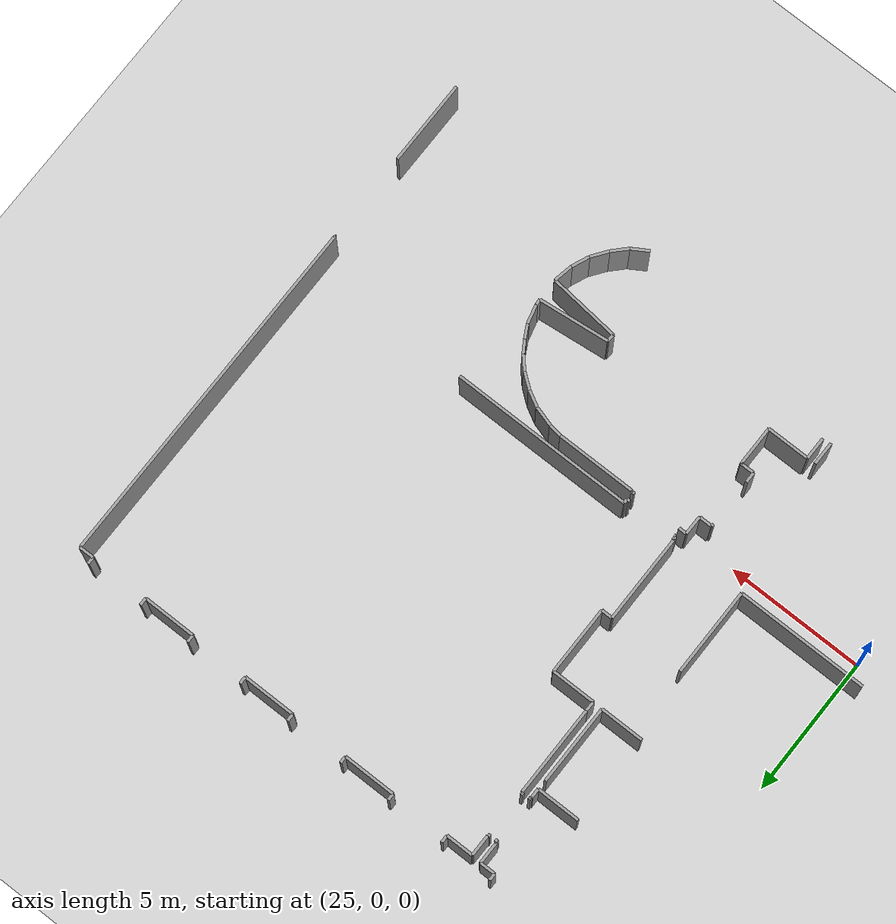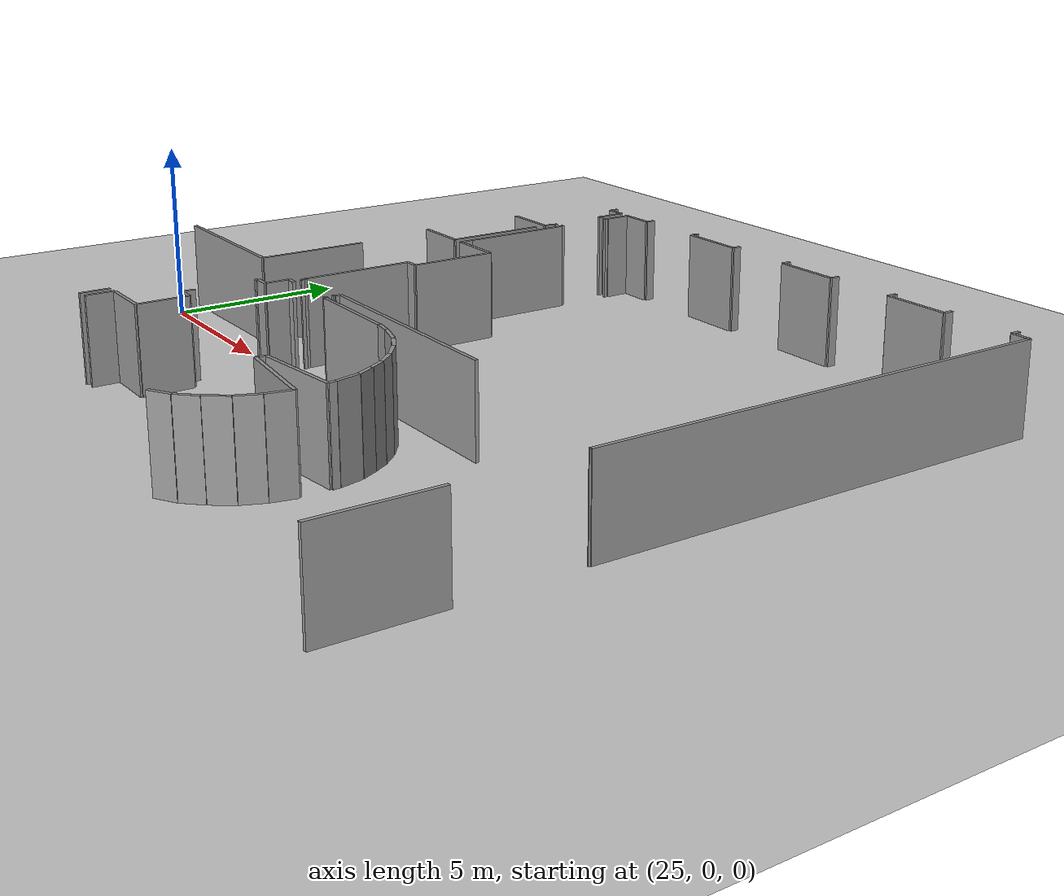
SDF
<sdf version="1.6">
 <world name="default">
  <model name="ground_plane">
   <static>1</static>
   <link name="link">
    <collision name="collision">
     <geometry><plane><normal>0 0 1</normal><size>100 100</size></plane></geometry>
     <surface><friction><ode><mu>100</mu><mu2>50</mu2></ode></friction></surface>
    </collision>
    <visual name="visual">
     <cast_shadows>0</cast_shadows>
     <geometry><plane><normal>0 0 1</normal><size>100 100</size></plane></geometry>
     <material>
      <script><uri>file://media/materials/scripts/gazebo.material</uri><name>Gazebo/Grey</name></script>
     </material>
    </visual>
   </link>
  </model>
  <model name="0510032261_A_40_1_103">
   <static>1</static>
   <link name="Wall_520">
    <collision name="Wall_520_Collision">
     <geometry><box><size>0.794663278272 0.1 2.5</size></box></geometry>
     <pose>0.397331639136 0 1.25 0 0 0</pose>
    </collision>
    <visual name="Wall_520_Visual">
     <pose>0.397331639136 0 1.25 0 0 0</pose>
     <geometry><box><size>0.794663278272 0.1 2.5</size></box></geometry>
     <material>
      <script><uri>file://media/materials/scripts/gazebo.material</uri><name>Gazebo/Grey</name></script>
      <ambient>1 1 1 1</ambient>
     </material>
    </visual>
    <pose>79.334815756 -21.1768742058 0 0 0 1.57079632679</pose>
   </link>
   <link name="Wall_521">
    <collision name="Wall_521_Collision">
     <geometry><box><size>1.53087674714 0.1 2.5</size></box></geometry>
     <pose>0.765438373571 0 1.25 0 0 0</pose>
    </collision>
    <visual name="Wall_521_Visual">
     <pose>0.765438373571 0 1.25 0 0 0</pose>
     <geometry><box><size>1.53087674714 0.1 2.5</size></box></geometry>
     <material>
      <script><uri>file://media/materials/scripts/gazebo.material</uri><name>Gazebo/Grey</name></script>
      <ambient>1 1 1 1</ambient>
     </material>
    </visual>
    <pose>79.334815756 -20.3822109276 0 0 0 0.0</pose>
   </link>
   <link name="Wall_522">
    <collision name="Wall_522_Collision">
     <geometry><box><size>1.42439644219 0.1 2.5</size></box></geometry>
     <pose>0.712198221093 0 1.25 0 0 0</pose>
    </collision>
    <visual name="Wall_522_Visual">
     <pose>0.712198221093 0 1.25 0 0 0</pose>
     <geometry><box><size>1.42439644219 0.1 2.5</size></box></geometry>
     <material>
      <script><uri>file://media/materials/scripts/gazebo.material</uri><name>Gazebo/Grey</name></script>
      <ambient>1 1 1 1</ambient>
     </material>
    </visual>
    <pose>80.8656925032 -20.3822109276 0 0 0 1.57079632679</pose>
   </link>
   <link name="Wall_523">
    <collision name="Wall_523_Collision">
     <geometry><box><size>0.490216010165 0.1 2.5</size></box></geometry>
     <pose>0.245108005083 0 1.25 0 0 0</pose>
    </collision>
    <visual name="Wall_523_Visual">
     <pose>0.245108005083 0 1.25 0 0 0</pose>
     <geometry><box><size>0.490216010165 0.1 2.5</size></box></geometry>
     <material>
      <script><uri>file://media/materials/scripts/gazebo.material</uri><name>Gazebo/Grey</name></script>
      <ambient>1 1 1 1</ambient>
     </material>
    </visual>
    <pose>80.8656925032 -18.9578144854 0 0 0 3.14159265359</pose>
   </link>
   <link name="Wall_524">
    <collision name="Wall_524_Collision">
     <geometry><box><size>0.367471410419 0.1 2.5</size></box></geometry>
     <pose>0.18373570521 0 1.25 0 0 0</pose>
    </collision>
    <visual name="Wall_524_Visual">
     <pose>0.18373570521 0 1.25 0 0 0</pose>
     <geometry><box><size>0.367471410419 0.1 2.5</size></box></geometry>
     <material>
      <script><uri>file://media/materials/scripts/gazebo.material</uri><name>Gazebo/Grey</name></script>
      <ambient>1 1 1 1</ambient>
     </material>
    </visual>
    <pose>80.375476493 -18.9578144854 0 0 0 1.57079632679</pose>
   </link>
   <link name="Wall_525">
    <collision name="Wall_525_Collision">
     <geometry><box><size>0.0874205844981 0.1 2.5</size></box></geometry>
     <pose>0.0437102922491 0 1.25 0 0 0</pose>
    </collision>
    <visual name="Wall_525_Visual">
     <pose>0.0437102922491 0 1.25 0 0 0</pose>
     <geometry><box><size>0.0874205844981 0.1 2.5</size></box></geometry>
     <material>
      <script><uri>file://media/materials/scripts/gazebo.material</uri><name>Gazebo/Grey</name></script>
      <ambient>1 1 1 1</ambient>
     </material>
    </visual>
    <pose>80.375476493 -16.8795425667 0 0 0 1.57079632679</pose>
   </link>
   <link name="Wall_526">
    <collision name="Wall_526_Collision">
     <geometry><box><size>0.474078780178 0.1 2.5</size></box></geometry>
     <pose>0.237039390089 0 1.25 0 0 0</pose>
    </collision>
    <visual name="Wall_526_Visual">
     <pose>0.237039390089 0 1.25 0 0 0</pose>
     <geometry><box><size>0.474078780178 0.1 2.5</size></box></geometry>
     <material>
      <script><uri>file://media/materials/scripts/gazebo.material</uri><name>Gazebo/Grey</name></script>
      <ambient>1 1 1 1</ambient>
     </material>
    </visual>
    <pose>80.375476493 -16.7921219822 0 0 0 0.0</pose>
   </link>
   <link name="Wall_527">
    <collision name="Wall_527_Collision">
     <geometry><box><size>0.682337992376 0.1 2.5</size></box></geometry>
     <pose>0.341168996188 0 1.25 0 0 0</pose>
    </collision>
    <visual name="Wall_527_Visual">
     <pose>0.341168996188 0 1.25 0 0 0</pose>
     <geometry><box><size>0.682337992376 0.1 2.5</size></box></geometry>
     <material>
      <script><uri>file://media/materials/scripts/gazebo.material</uri><name>Gazebo/Grey</name></script>
      <ambient>1 1 1 1</ambient>
     </material>
    </visual>
    <pose>80.8495552732 -16.7921219822 0 0 0 1.57079632679</pose>
   </link>
   <link name="Wall_528">
    <collision name="Wall_528_Collision">
     <geometry><box><size>0.289707750953 0.1 2.5</size></box></geometry>
     <pose>0.144853875476 0 1.25 0 0 0</pose>
    </collision>
    <visual name="Wall_528_Visual">
     <pose>0.144853875476 0 1.25 0 0 0</pose>
     <geometry><box><size>0.289707750953 0.1 2.5</size></box></geometry>
     <material>
      <script><uri>file://media/materials/scripts/gazebo.material</uri><name>Gazebo/Grey</name></script>
      <ambient>1 1 1 1</ambient>
     </material>
    </visual>
    <pose>80.8495552732 -16.1097839898 0 0 0 0.0</pose>
   </link>
   <link name="Wall_529">
    <collision name="Wall_529_Collision">
     <geometry><box><size>0.107878017789 0.1 2.5</size></box></geometry>
     <pose>0.0539390088945 0 1.25 0 0 0</pose>
    </collision>
    <visual name="Wall_529_Visual">
     <pose>0.0539390088945 0 1.25 0 0 0</pose>
     <geometry><box><size>0.107878017789 0.1 2.5</size></box></geometry>
     <material>
      <script><uri>file://media/materials/scripts/gazebo.material</uri><name>Gazebo/Grey</name></script>
      <ambient>1 1 1 1</ambient>
     </material>
    </visual>
    <pose>82.9092757306 -16.1097839898 0 0 0 0.0</pose>
   </link>
   <link name="Wall_530">
    <collision name="Wall_530_Collision">
     <geometry><box><size>0.0275730622618 0.1 2.5</size></box></geometry>
     <pose>0.0137865311309 0 1.25 0 0 0</pose>
    </collision>
    <visual name="Wall_530_Visual">
     <pose>0.0137865311309 0 1.25 0 0 0</pose>
     <geometry><box><size>0.0275730622618 0.1 2.5</size></box></geometry>
     <material>
      <script><uri>file://media/materials/scripts/gazebo.material</uri><name>Gazebo/Grey</name></script>
      <ambient>1 1 1 1</ambient>
     </material>
    </visual>
    <pose>83.0171537484 -16.1097839898 0 0 0 -1.57079632679</pose>
   </link>
   <link name="Wall_531">
    <collision name="Wall_531_Collision">
     <geometry><box><size>2.85781448539 0.1 2.5</size></box></geometry>
     <pose>1.42890724269 0 1.25 0 0 0</pose>
    </collision>
    <visual name="Wall_531_Visual">
     <pose>1.42890724269 0 1.25 0 0 0</pose>
     <geometry><box><size>2.85781448539 0.1 2.5</size></box></geometry>
     <material>
      <script><uri>file://media/materials/scripts/gazebo.material</uri><name>Gazebo/Grey</name></script>
      <ambient>1 1 1 1</ambient>
     </material>
    </visual>
    <pose>83.0171537484 -16.1373570521 0 0 0 0.0</pose>
   </link>
   <link name="Wall_532">
    <collision name="Wall_532_Collision">
     <geometry><box><size>0.465319601563 0.1 2.5</size></box></geometry>
     <pose>0.232659800782 0 1.25 0 0 0</pose>
    </collision>
    <visual name="Wall_532_Visual">
     <pose>0.232659800782 0 1.25 0 0 0</pose>
     <geometry><box><size>0.465319601563 0.1 2.5</size></box></geometry>
     <material>
      <script><uri>file://media/materials/scripts/gazebo.material</uri><name>Gazebo/Grey</name></script>
      <ambient>1 1 1 1</ambient>
     </material>
    </visual>
    <pose>85.8749682338 -16.1373570521 0 0 0 -0.134482345351</pose>
   </link>
   <link name="Wall_533">
    <collision name="Wall_533_Collision">
     <geometry><box><size>0.717699498411 0.1 2.5</size></box></geometry>
     <pose>0.358849749205 0 1.25 0 0 0</pose>
    </collision>
    <visual name="Wall_533_Visual">
     <pose>0.358849749205 0 1.25 0 0 0</pose>
     <geometry><box><size>0.717699498411 0.1 2.5</size></box></geometry>
     <material>
      <script><uri>file://media/materials/scripts/gazebo.material</uri><name>Gazebo/Grey</name></script>
      <ambient>1 1 1 1</ambient>
     </material>
    </visual>
    <pose>86.3360864041 -16.1997458704 0 0 0 -0.281485445893</pose>
   </link>
   <link name="Wall_534">
    <collision name="Wall_534_Collision">
     <geometry><box><size>0.600118670881 0.1 2.5</size></box></geometry>
     <pose>0.30005933544 0 1.25 0 0 0</pose>
    </collision>
    <visual name="Wall_534_Visual">
     <pose>0.30005933544 0 1.25 0 0 0</pose>
     <geometry><box><size>0.600118670881 0.1 2.5</size></box></geometry>
     <material>
      <script><uri>file://media/materials/scripts/gazebo.material</uri><name>Gazebo/Grey</name></script>
      <ambient>1 1 1 1</ambient>
     </material>
    </visual>
    <pose>87.0255400254 -16.3991105464 0 0 0 -0.496795103304</pose>
   </link>
   <link name="Wall_535">
    <collision name="Wall_535_Collision">
     <geometry><box><size>0.631675035667 0.1 2.5</size></box></geometry>
     <pose>0.315837517833 0 1.25 0 0 0</pose>
    </collision>
    <visual name="Wall_535_Visual">
     <pose>0.315837517833 0 1.25 0 0 0</pose>
     <geometry><box><size>0.631675035667 0.1 2.5</size></box></geometry>
     <material>
      <script><uri>file://media/materials/scripts/gazebo.material</uri><name>Gazebo/Grey</name></script>
      <ambient>1 1 1 1</ambient>
     </material>
    </visual>
    <pose>87.5531130877 -16.685133418 0 0 0 -0.654162543491</pose>
   </link>
   <link name="Wall_536">
    <collision name="Wall_536_Collision">
     <geometry><box><size>0.567815129569 0.1 2.5</size></box></geometry>
     <pose>0.283907564784 0 1.25 0 0 0</pose>
    </collision>
    <visual name="Wall_536_Visual">
     <pose>0.283907564784 0 1.25 0 0 0</pose>
     <geometry><box><size>0.567815129569 0.1 2.5</size></box></geometry>
     <material>
      <script><uri>file://media/materials/scripts/gazebo.material</uri><name>Gazebo/Grey</name></script>
      <ambient>1 1 1 1</ambient>
     </material>
    </visual>
    <pose>88.0543837357 -17.0695044473 0 0 0 -0.831460916208</pose>
   </link>
   <link name="Wall_537">
    <collision name="Wall_537_Collision">
     <geometry><box><size>0.480005890367 0.1 2.5</size></box></geometry>
     <pose>0.240002945184 0 1.25 0 0 0</pose>
    </collision>
    <visual name="Wall_537_Visual">
     <pose>0.240002945184 0 1.25 0 0 0</pose>
     <geometry><box><size>0.480005890367 0.1 2.5</size></box></geometry>
     <material>
      <script><uri>file://media/materials/scripts/gazebo.material</uri><name>Gazebo/Grey</name></script>
      <ambient>1 1 1 1</ambient>
     </material>
    </visual>
    <pose>88.4369758577 -17.4890724269 0 0 0 -1.00849311683</pose>
   </link>
   <link name="Wall_538">
    <collision name="Wall_538_Collision">
     <geometry><box><size>0.508723120561 0.1 2.5</size></box></geometry>
     <pose>0.25436156028 0 1.25 0 0 0</pose>
    </collision>
    <visual name="Wall_538_Visual">
     <pose>0.25436156028 0 1.25 0 0 0</pose>
     <geometry><box><size>0.508723120561 0.1 2.5</size></box></geometry>
     <material>
      <script><uri>file://media/materials/scripts/gazebo.material</uri><name>Gazebo/Grey</name></script>
      <ambient>1 1 1 1</ambient>
     </material>
    </visual>
    <pose>88.692884371 -17.8951715375 0 0 0 -1.07944321525</pose>
   </link>
   <link name="Wall_539">
    <collision name="Wall_539_Collision">
     <geometry><box><size>0.677281504059 0.1 2.5</size></box></geometry>
     <pose>0.338640752029 0 1.25 0 0 0</pose>
    </collision>
    <visual name="Wall_539_Visual">
     <pose>0.338640752029 0 1.25 0 0 0</pose>
     <geometry><box><size>0.677281504059 0.1 2.5</size></box></geometry>
     <material>
      <script><uri>file://media/materials/scripts/gazebo.material</uri><name>Gazebo/Grey</name></script>
      <ambient>1 1 1 1</ambient>
     </material>
    </visual>
    <pose>88.932909784 -18.3437102922 0 0 0 -1.32577216155</pose>
   </link>
   <link name="Wall_540">
    <collision name="Wall_540_Collision">
     <geometry><box><size>0.202551100699 0.1 2.5</size></box></geometry>
     <pose>0.101275550349 0 1.25 0 0 0</pose>
    </collision>
    <visual name="Wall_540_Visual">
     <pose>0.101275550349 0 1.25 0 0 0</pose>
     <geometry><box><size>0.202551100699 0.1 2.5</size></box></geometry>
     <material>
      <script><uri>file://media/materials/scripts/gazebo.material</uri><name>Gazebo/Grey</name></script>
      <ambient>1 1 1 1</ambient>
     </material>
    </visual>
    <pose>89.0972045743 -19.0007623888 0 0 0 -1.50865143579</pose>
   </link>
   <link name="Wall_541">
    <collision name="Wall_541_Collision">
     <geometry><box><size>2.53516840019 0.1 2.5</size></box></geometry>
     <pose>1.26758420009 0 1.25 0 0 0</pose>
    </collision>
    <visual name="Wall_541_Visual">
     <pose>1.26758420009 0 1.25 0 0 0</pose>
     <geometry><box><size>2.53516840019 0.1 2.5</size></box></geometry>
     <material>
      <script><uri>file://media/materials/scripts/gazebo.material</uri><name>Gazebo/Grey</name></script>
      <ambient>1 1 1 1</ambient>
     </material>
    </visual>
    <pose>89.1097839898 -19.2029224905 0 0 0 -3.03427853171</pose>
   </link>
   <link name="Wall_542">
    <collision name="Wall_542_Collision">
     <geometry><box><size>0.260029419097 0.1 2.5</size></box></geometry>
     <pose>0.130014709549 0 1.25 0 0 0</pose>
    </collision>
    <visual name="Wall_542_Visual">
     <pose>0.130014709549 0 1.25 0 0 0</pose>
     <geometry><box><size>0.260029419097 0.1 2.5</size></box></geometry>
     <material>
      <script><uri>file://media/materials/scripts/gazebo.material</uri><name>Gazebo/Grey</name></script>
      <ambient>1 1 1 1</ambient>
     </material>
    </visual>
    <pose>86.5891994917 -19.4744599746 0 0 0 -1.64367047901</pose>
   </link>
   <link name="Wall_543">
    <collision name="Wall_543_Collision">
     <geometry><box><size>2.56795494186 0.1 2.5</size></box></geometry>
     <pose>1.28397747093 0 1.25 0 0 0</pose>
    </collision>
    <visual name="Wall_543_Visual">
     <pose>1.28397747093 0 1.25 0 0 0</pose>
     <geometry><box><size>2.56795494186 0.1 2.5</size></box></geometry>
     <material>
      <script><uri>file://media/materials/scripts/gazebo.material</uri><name>Gazebo/Grey</name></script>
      <ambient>1 1 1 1</ambient>
     </material>
    </visual>
    <pose>86.5702668361 -19.7337992376 0 0 0 -0.102854186139</pose>
   </link>
   <link name="Wall_544">
    <collision name="Wall_544_Collision">
     <geometry><box><size>0.686256956688 0.1 2.5</size></box></geometry>
     <pose>0.343128478344 0 1.25 0 0 0</pose>
    </collision>
    <visual name="Wall_544_Visual">
     <pose>0.343128478344 0 1.25 0 0 0</pose>
     <geometry><box><size>0.686256956688 0.1 2.5</size></box></geometry>
     <material>
      <script><uri>file://media/materials/scripts/gazebo.material</uri><name>Gazebo/Grey</name></script>
      <ambient>1 1 1 1</ambient>
     </material>
    </visual>
    <pose>89.1246505718 -19.9974587039 0 0 0 -1.76815557451</pose>
   </link>
   <link name="Wall_545">
    <collision name="Wall_545_Collision">
     <geometry><box><size>0.651676280617 0.1 2.5</size></box></geometry>
     <pose>0.325838140309 0 1.25 0 0 0</pose>
    </collision>
    <visual name="Wall_545_Visual">
     <pose>0.325838140309 0 1.25 0 0 0</pose>
     <geometry><box><size>0.651676280617 0.1 2.5</size></box></geometry>
     <material>
      <script><uri>file://media/materials/scripts/gazebo.material</uri><name>Gazebo/Grey</name></script>
      <ambient>1 1 1 1</ambient>
     </material>
    </visual>
    <pose>88.9900889454 -20.6703939009 0 0 0 -1.96567743795</pose>
   </link>
   <link name="Wall_546">
    <collision name="Wall_546_Collision">
     <geometry><box><size>0.670140975916 0.1 2.5</size></box></geometry>
     <pose>0.335070487958 0 1.25 0 0 0</pose>
    </collision>
    <visual name="Wall_546_Visual">
     <pose>0.335070487958 0 1.25 0 0 0</pose>
     <geometry><box><size>0.670140975916 0.1 2.5</size></box></geometry>
     <material>
      <script><uri>file://media/materials/scripts/gazebo.material</uri><name>Gazebo/Grey</name></script>
      <ambient>1 1 1 1</ambient>
     </material>
    </visual>
    <pose>88.7393900889 -21.2719186785 0 0 0 -2.19677666169</pose>
   </link>
   <link name="Wall_547">
    <collision name="Wall_547_Collision">
     <geometry><box><size>0.649891738752 0.1 2.5</size></box></geometry>
     <pose>0.324945869376 0 1.25 0 0 0</pose>
    </collision>
    <visual name="Wall_547_Visual">
     <pose>0.324945869376 0 1.25 0 0 0</pose>
     <geometry><box><size>0.649891738752 0.1 2.5</size></box></geometry>
     <material>
      <script><uri>file://media/materials/scripts/gazebo.material</uri><name>Gazebo/Grey</name></script>
      <ambient>1 1 1 1</ambient>
     </material>
    </visual>
    <pose>88.3467598475 -21.8149936468 0 0 0 -2.33794430427</pose>
   </link>
   <link name="Wall_548">
    <collision name="Wall_548_Collision">
     <geometry><box><size>0.656339240244 0.1 2.5</size></box></geometry>
     <pose>0.328169620122 0 1.25 0 0 0</pose>
    </collision>
    <visual name="Wall_548_Visual">
     <pose>0.328169620122 0 1.25 0 0 0</pose>
     <geometry><box><size>0.656339240244 0.1 2.5</size></box></geometry>
     <material>
      <script><uri>file://media/materials/scripts/gazebo.material</uri><name>Gazebo/Grey</name></script>
      <ambient>1 1 1 1</ambient>
     </material>
    </visual>
    <pose>87.8956797967 -22.2828462516 0 0 0 -2.59247425594</pose>
   </link>
   <link name="Wall_575">
    <collision name="Wall_575_Collision">
     <geometry><box><size>0.82833545108 0.1 2.5</size></box></geometry>
     <pose>0.41416772554 0 1.25 0 0 0</pose>
    </collision>
    <visual name="Wall_575_Visual">
     <pose>0.41416772554 0 1.25 0 0 0</pose>
     <geometry><box><size>0.82833545108 0.1 2.5</size></box></geometry>
     <material>
      <script><uri>file://media/materials/scripts/gazebo.material</uri><name>Gazebo/Grey</name></script>
      <ambient>1 1 1 1</ambient>
     </material>
    </visual>
    <pose>79.0388818297 -20.3918678526 0 0 0 -1.57079632679</pose>
   </link>
   <link name="Wall_596">
    <collision name="Wall_596_Collision">
     <geometry><box><size>0.249682337992 0.1 2.5</size></box></geometry>
     <pose>0.124841168996 0 1.25 0 0 0</pose>
    </collision>
    <visual name="Wall_596_Visual">
     <pose>0.124841168996 0 1.25 0 0 0</pose>
     <geometry><box><size>0.249682337992 0.1 2.5</size></box></geometry>
     <material>
      <script><uri>file://media/materials/scripts/gazebo.material</uri><name>Gazebo/Grey</name></script>
      <ambient>1 1 1 1</ambient>
     </material>
    </visual>
    <pose>78.9628970775 -3.74688691233 0 0 0 -1.57079632679</pose>
   </link>
   <link name="Wall_597">
    <collision name="Wall_597_Collision">
     <geometry><box><size>0.551715374841 0.1 2.5</size></box></geometry>
     <pose>0.275857687421 0 1.25 0 0 0</pose>
    </collision>
    <visual name="Wall_597_Visual">
     <pose>0.275857687421 0 1.25 0 0 0</pose>
     <geometry><box><size>0.551715374841 0.1 2.5</size></box></geometry>
     <material>
      <script><uri>file://media/materials/scripts/gazebo.material</uri><name>Gazebo/Grey</name></script>
      <ambient>1 1 1 1</ambient>
     </material>
    </visual>
    <pose>78.9628970775 -3.99656925032 0 0 0 0.0</pose>
   </link>
   <link name="Wall_598">
    <collision name="Wall_598_Collision">
     <geometry><box><size>0.794282083863 0.1 2.5</size></box></geometry>
     <pose>0.397141041931 0 1.25 0 0 0</pose>
    </collision>
    <visual name="Wall_598_Visual">
     <pose>0.397141041931 0 1.25 0 0 0</pose>
     <geometry><box><size>0.794282083863 0.1 2.5</size></box></geometry>
     <material>
      <script><uri>file://media/materials/scripts/gazebo.material</uri><name>Gazebo/Grey</name></script>
      <ambient>1 1 1 1</ambient>
     </material>
    </visual>
    <pose>79.5146124524 -3.99656925032 0 0 0 -1.57079632679</pose>
   </link>
   <link name="Wall_599">
    <collision name="Wall_599_Collision">
     <geometry><box><size>0.0406607369759 0.1 2.5</size></box></geometry>
     <pose>0.0203303684879 0 1.25 0 0 0</pose>
    </collision>
    <visual name="Wall_599_Visual">
     <pose>0.0203303684879 0 1.25 0 0 0</pose>
     <geometry><box><size>0.0406607369759 0.1 2.5</size></box></geometry>
     <material>
      <script><uri>file://media/materials/scripts/gazebo.material</uri><name>Gazebo/Grey</name></script>
      <ambient>1 1 1 1</ambient>
     </material>
    </visual>
    <pose>79.5146124524 -4.79085133418 0 0 0 0.0</pose>
   </link>
   <link name="Wall_600">
    <collision name="Wall_600_Collision">
     <geometry><box><size>0.10457433291 0.1 2.5</size></box></geometry>
     <pose>0.0522871664549 0 1.25 0 0 0</pose>
    </collision>
    <visual name="Wall_600_Visual">
     <pose>0.0522871664549 0 1.25 0 0 0</pose>
     <geometry><box><size>0.10457433291 0.1 2.5</size></box></geometry>
     <material>
      <script><uri>file://media/materials/scripts/gazebo.material</uri><name>Gazebo/Grey</name></script>
      <ambient>1 1 1 1</ambient>
     </material>
    </visual>
    <pose>79.5552731893 -4.79085133418 0 0 0 -1.57079632679</pose>
   </link>
   <link name="Wall_601">
    <collision name="Wall_601_Collision">
     <geometry><box><size>0.0908513341804 0.1 2.5</size></box></geometry>
     <pose>0.0454256670902 0 1.25 0 0 0</pose>
    </collision>
    <visual name="Wall_601_Visual">
     <pose>0.0454256670902 0 1.25 0 0 0</pose>
     <geometry><box><size>0.0908513341804 0.1 2.5</size></box></geometry>
     <material>
      <script><uri>file://media/materials/scripts/gazebo.material</uri><name>Gazebo/Grey</name></script>
      <ambient>1 1 1 1</ambient>
     </material>
    </visual>
    <pose>79.5552731893 -6.47445997459 0 0 0 -1.57079632679</pose>
   </link>
   <link name="Wall_602">
    <collision name="Wall_602_Collision">
     <geometry><box><size>0.0268106734435 0.1 2.5</size></box></geometry>
     <pose>0.0134053367217 0 1.25 0 0 0</pose>
    </collision>
    <visual name="Wall_602_Visual">
     <pose>0.0134053367217 0 1.25 0 0 0</pose>
     <geometry><box><size>0.0268106734435 0.1 2.5</size></box></geometry>
     <material>
      <script><uri>file://media/materials/scripts/gazebo.material</uri><name>Gazebo/Grey</name></script>
      <ambient>1 1 1 1</ambient>
     </material>
    </visual>
    <pose>79.5552731893 -6.56531130877 0 0 0 3.14159265359</pose>
   </link>
   <link name="Wall_603">
    <collision name="Wall_603_Collision">
     <geometry><box><size>0.343837357052 0.1 2.5</size></box></geometry>
     <pose>0.171918678526 0 1.25 0 0 0</pose>
    </collision>
    <visual name="Wall_603_Visual">
     <pose>0.171918678526 0 1.25 0 0 0</pose>
     <geometry><box><size>0.343837357052 0.1 2.5</size></box></geometry>
     <material>
      <script><uri>file://media/materials/scripts/gazebo.material</uri><name>Gazebo/Grey</name></script>
      <ambient>1 1 1 1</ambient>
     </material>
    </visual>
    <pose>79.5284625159 -6.56531130877 0 0 0 -1.57079632679</pose>
   </link>
   <link name="Wall_604">
    <collision name="Wall_604_Collision">
     <geometry><box><size>1.57052096569 0.1 2.5</size></box></geometry>
     <pose>0.785260482846 0 1.25 0 0 0</pose>
    </collision>
    <visual name="Wall_604_Visual">
     <pose>0.785260482846 0 1.25 0 0 0</pose>
     <geometry><box><size>1.57052096569 0.1 2.5</size></box></geometry>
     <material>
      <script><uri>file://media/materials/scripts/gazebo.material</uri><name>Gazebo/Grey</name></script>
      <ambient>1 1 1 1</ambient>
     </material>
    </visual>
    <pose>79.5284625159 -6.90914866582 0 0 0 3.14159265359</pose>
   </link>
   <link name="Wall_627">
    <collision name="Wall_627_Collision">
     <geometry><box><size>2.86226175349 0.1 2.5</size></box></geometry>
     <pose>1.43113087675 0 1.25 0 0 0</pose>
    </collision>
    <visual name="Wall_627_Visual">
     <pose>1.43113087675 0 1.25 0 0 0</pose>
     <geometry><box><size>2.86226175349 0.1 2.5</size></box></geometry>
     <material>
      <script><uri>file://media/materials/scripts/gazebo.material</uri><name>Gazebo/Grey</name></script>
      <ambient>1 1 1 1</ambient>
     </material>
    </visual>
    <pose>79.5156289708 -7.23951715375 0 0 0 -1.57079632679</pose>
   </link>
   <link name="Wall_628">
    <collision name="Wall_628_Collision">
     <geometry><box><size>1.56416772554 0.1 2.5</size></box></geometry>
     <pose>0.78208386277 0 1.25 0 0 0</pose>
    </collision>
    <visual name="Wall_628_Visual">
     <pose>0.78208386277 0 1.25 0 0 0</pose>
     <geometry><box><size>1.56416772554 0.1 2.5</size></box></geometry>
     <material>
      <script><uri>file://media/materials/scripts/gazebo.material</uri><name>Gazebo/Grey</name></script>
      <ambient>1 1 1 1</ambient>
     </material>
    </visual>
    <pose>79.5156289708 -10.1017789072 0 0 0 3.14159265359</pose>
   </link>
   <link name="Wall_631">
    <collision name="Wall_631_Collision">
     <geometry><box><size>3.14129606099 0.1 2.5</size></box></geometry>
     <pose>1.5706480305 0 1.25 0 0 0</pose>
    </collision>
    <visual name="Wall_631_Visual">
     <pose>1.5706480305 0 1.25 0 0 0</pose>
     <geometry><box><size>3.14129606099 0.1 2.5</size></box></geometry>
     <material>
      <script><uri>file://media/materials/scripts/gazebo.material</uri><name>Gazebo/Grey</name></script>
      <ambient>1 1 1 1</ambient>
     </material>
    </visual>
    <pose>78.3343074968 -12.5477763659 0 0 0 -1.57079632679</pose>
   </link>
   <link name="Wall_632">
    <collision name="Wall_632_Collision">
     <geometry><box><size>4.75730622618 0.1 2.5</size></box></geometry>
     <pose>2.37865311309 0 1.25 0 0 0</pose>
    </collision>
    <visual name="Wall_632_Visual">
     <pose>2.37865311309 0 1.25 0 0 0</pose>
     <geometry><box><size>4.75730622618 0.1 2.5</size></box></geometry>
     <material>
      <script><uri>file://media/materials/scripts/gazebo.material</uri><name>Gazebo/Grey</name></script>
      <ambient>1 1 1 1</ambient>
     </material>
    </visual>
    <pose>78.3343074968 -15.6890724269 0 0 0 3.14159265359</pose>
   </link>
   <link name="Wall_638">
    <collision name="Wall_638_Collision">
     <geometry><box><size>3.22287166455 0.1 2.5</size></box></geometry>
     <pose>1.61143583227 0 1.25 0 0 0</pose>
    </collision>
    <visual name="Wall_638_Visual">
     <pose>1.61143583227 0 1.25 0 0 0</pose>
     <geometry><box><size>3.22287166455 0.1 2.5</size></box></geometry>
     <material>
      <script><uri>file://media/materials/scripts/gazebo.material</uri><name>Gazebo/Grey</name></script>
      <ambient>1 1 1 1</ambient>
     </material>
    </visual>
    <pose>79.8675984752 -9.75616264295 0 0 0 1.57079632679</pose>
   </link>
   <link name="Wall_639">
    <collision name="Wall_639_Collision">
     <geometry><box><size>0.0322744599746 0.1 2.5</size></box></geometry>
     <pose>0.0161372299873 0 1.25 0 0 0</pose>
    </collision>
    <visual name="Wall_639_Visual">
     <pose>0.0161372299873 0 1.25 0 0 0</pose>
     <geometry><box><size>0.0322744599746 0.1 2.5</size></box></geometry>
     <material>
      <script><uri>file://media/materials/scripts/gazebo.material</uri><name>Gazebo/Grey</name></script>
      <ambient>1 1 1 1</ambient>
     </material>
    </visual>
    <pose>79.8675984752 -6.5332909784 0 0 0 3.14159265359</pose>
   </link>
   <link name="Wall_640">
    <collision name="Wall_640_Collision">
     <geometry><box><size>0.0933926302414 0.1 2.5</size></box></geometry>
     <pose>0.0466963151207 0 1.25 0 0 0</pose>
    </collision>
    <visual name="Wall_640_Visual">
     <pose>0.0466963151207 0 1.25 0 0 0</pose>
     <geometry><box><size>0.0933926302414 0.1 2.5</size></box></geometry>
     <material>
      <script><uri>file://media/materials/scripts/gazebo.material</uri><name>Gazebo/Grey</name></script>
      <ambient>1 1 1 1</ambient>
     </material>
    </visual>
    <pose>79.8353240152 -6.5332909784 0 0 0 1.57079632679</pose>
   </link>
   <link name="Wall_641">
    <collision name="Wall_641_Collision">
     <geometry><box><size>0.0928843710292 0.1 2.5</size></box></geometry>
     <pose>0.0464421855146 0 1.25 0 0 0</pose>
    </collision>
    <visual name="Wall_641_Visual">
     <pose>0.0464421855146 0 1.25 0 0 0</pose>
     <geometry><box><size>0.0928843710292 0.1 2.5</size></box></geometry>
     <material>
      <script><uri>file://media/materials/scripts/gazebo.material</uri><name>Gazebo/Grey</name></script>
      <ambient>1 1 1 1</ambient>
     </material>
    </visual>
    <pose>79.8353240152 -4.88424396442 0 0 0 1.57079632679</pose>
   </link>
   <link name="Wall_642">
    <collision name="Wall_642_Collision">
     <geometry><box><size>0.0261753494282 0.1 2.5</size></box></geometry>
     <pose>0.0130876747141 0 1.25 0 0 0</pose>
    </collision>
    <visual name="Wall_642_Visual">
     <pose>0.0130876747141 0 1.25 0 0 0</pose>
     <geometry><box><size>0.0261753494282 0.1 2.5</size></box></geometry>
     <material>
      <script><uri>file://media/materials/scripts/gazebo.material</uri><name>Gazebo/Grey</name></script>
      <ambient>1 1 1 1</ambient>
     </material>
    </visual>
    <pose>79.8353240152 -4.79135959339 0 0 0 0.0</pose>
   </link>
   <link name="Wall_643">
    <collision name="Wall_643_Collision">
     <geometry><box><size>0.770139771283 0.1 2.5</size></box></geometry>
     <pose>0.385069885642 0 1.25 0 0 0</pose>
    </collision>
    <visual name="Wall_643_Visual">
     <pose>0.385069885642 0 1.25 0 0 0</pose>
     <geometry><box><size>0.770139771283 0.1 2.5</size></box></geometry>
     <material>
      <script><uri>file://media/materials/scripts/gazebo.material</uri><name>Gazebo/Grey</name></script>
      <ambient>1 1 1 1</ambient>
     </material>
    </visual>
    <pose>79.8614993647 -4.79135959339 0 0 0 1.57079632679</pose>
   </link>
   <link name="Wall_644">
    <collision name="Wall_644_Collision">
     <geometry><box><size>0.988945362135 0.1 2.5</size></box></geometry>
     <pose>0.494472681067 0 1.25 0 0 0</pose>
    </collision>
    <visual name="Wall_644_Visual">
     <pose>0.494472681067 0 1.25 0 0 0</pose>
     <geometry><box><size>0.988945362135 0.1 2.5</size></box></geometry>
     <material>
      <script><uri>file://media/materials/scripts/gazebo.material</uri><name>Gazebo/Grey</name></script>
      <ambient>1 1 1 1</ambient>
     </material>
    </visual>
    <pose>79.8614993647 -4.02121982211 0 0 0 0.0</pose>
   </link>
   <link name="Wall_645">
    <collision name="Wall_645_Collision">
     <geometry><box><size>0.270266836086 0.1 2.5</size></box></geometry>
     <pose>0.135133418043 0 1.25 0 0 0</pose>
    </collision>
    <visual name="Wall_645_Visual">
     <pose>0.135133418043 0 1.25 0 0 0</pose>
     <geometry><box><size>0.270266836086 0.1 2.5</size></box></geometry>
     <material>
      <script><uri>file://media/materials/scripts/gazebo.material</uri><name>Gazebo/Grey</name></script>
      <ambient>1 1 1 1</ambient>
     </material>
    </visual>
    <pose>80.8504447268 -4.02121982211 0 0 0 1.57079632679</pose>
   </link>
   <link name="Wall_646">
    <collision name="Wall_646_Collision">
     <geometry><box><size>0.244345616264 0.1 2.5</size></box></geometry>
     <pose>0.122172808132 0 1.25 0 0 0</pose>
    </collision>
    <visual name="Wall_646_Visual">
     <pose>0.122172808132 0 1.25 0 0 0</pose>
     <geometry><box><size>0.244345616264 0.1 2.5</size></box></geometry>
     <material>
      <script><uri>file://media/materials/scripts/gazebo.material</uri><name>Gazebo/Grey</name></script>
      <ambient>1 1 1 1</ambient>
     </material>
    </visual>
    <pose>82.9679796696 -3.75095298602 0 0 0 -1.57079632679</pose>
   </link>
   <link name="Wall_647">
    <collision name="Wall_647_Collision">
     <geometry><box><size>1.88576874206 0.1 2.5</size></box></geometry>
     <pose>0.942884371029 0 1.25 0 0 0</pose>
    </collision>
    <visual name="Wall_647_Visual">
     <pose>0.942884371029 0 1.25 0 0 0</pose>
     <geometry><box><size>1.88576874206 0.1 2.5</size></box></geometry>
     <material>
      <script><uri>file://media/materials/scripts/gazebo.material</uri><name>Gazebo/Grey</name></script>
      <ambient>1 1 1 1</ambient>
     </material>
    </visual>
    <pose>82.9679796696 -3.99529860229 0 0 0 0.0</pose>
   </link>
   <link name="Wall_648">
    <collision name="Wall_648_Collision">
     <geometry><box><size>0.24459974587 0.1 2.5</size></box></geometry>
     <pose>0.122299872935 0 1.25 0 0 0</pose>
    </collision>
    <visual name="Wall_648_Visual">
     <pose>0.122299872935 0 1.25 0 0 0</pose>
     <geometry><box><size>0.24459974587 0.1 2.5</size></box></geometry>
     <material>
      <script><uri>file://media/materials/scripts/gazebo.material</uri><name>Gazebo/Grey</name></script>
      <ambient>1 1 1 1</ambient>
     </material>
    </visual>
    <pose>84.8537484117 -3.99529860229 0 0 0 1.57079632679</pose>
   </link>
   <link name="Wall_649">
    <collision name="Wall_649_Collision">
     <geometry><box><size>0.258449809403 0.1 2.5</size></box></geometry>
     <pose>0.129224904701 0 1.25 0 0 0</pose>
    </collision>
    <visual name="Wall_649_Visual">
     <pose>0.129224904701 0 1.25 0 0 0</pose>
     <geometry><box><size>0.258449809403 0.1 2.5</size></box></geometry>
     <material>
      <script><uri>file://media/materials/scripts/gazebo.material</uri><name>Gazebo/Grey</name></script>
      <ambient>1 1 1 1</ambient>
     </material>
    </visual>
    <pose>86.9632782719 -3.75069885642 0 0 0 -1.57079632679</pose>
   </link>
   <link name="Wall_650">
    <collision name="Wall_650_Collision">
     <geometry><box><size>1.89631512071 0.1 2.5</size></box></geometry>
     <pose>0.948157560356 0 1.25 0 0 0</pose>
    </collision>
    <visual name="Wall_650_Visual">
     <pose>0.948157560356 0 1.25 0 0 0</pose>
     <geometry><box><size>1.89631512071 0.1 2.5</size></box></geometry>
     <material>
      <script><uri>file://media/materials/scripts/gazebo.material</uri><name>Gazebo/Grey</name></script>
      <ambient>1 1 1 1</ambient>
     </material>
    </visual>
    <pose>86.9632782719 -4.00914866582 0 0 0 0.0</pose>
   </link>
   <link name="Wall_651">
    <collision name="Wall_651_Collision">
     <geometry><box><size>0.260101651842 0.1 2.5</size></box></geometry>
     <pose>0.130050825921 0 1.25 0 0 0</pose>
    </collision>
    <visual name="Wall_651_Visual">
     <pose>0.130050825921 0 1.25 0 0 0</pose>
     <geometry><box><size>0.260101651842 0.1 2.5</size></box></geometry>
     <material>
      <script><uri>file://media/materials/scripts/gazebo.material</uri><name>Gazebo/Grey</name></script>
      <ambient>1 1 1 1</ambient>
     </material>
    </visual>
    <pose>88.8595933926 -4.00914866582 0 0 0 1.57079632679</pose>
   </link>
   <link name="Wall_652">
    <collision name="Wall_652_Collision">
     <geometry><box><size>0.267344345616 0.1 2.5</size></box></geometry>
     <pose>0.133672172808 0 1.25 0 0 0</pose>
    </collision>
    <visual name="Wall_652_Visual">
     <pose>0.133672172808 0 1.25 0 0 0</pose>
     <geometry><box><size>0.267344345616 0.1 2.5</size></box></geometry>
     <material>
      <script><uri>file://media/materials/scripts/gazebo.material</uri><name>Gazebo/Grey</name></script>
      <ambient>1 1 1 1</ambient>
     </material>
    </visual>
    <pose>90.9653113088 -3.74904701398 0 0 0 -1.57079632679</pose>
   </link>
   <link name="Wall_653">
    <collision name="Wall_653_Collision">
     <geometry><box><size>1.89428208386 0.1 2.5</size></box></geometry>
     <pose>0.947141041931 0 1.25 0 0 0</pose>
    </collision>
    <visual name="Wall_653_Visual">
     <pose>0.947141041931 0 1.25 0 0 0</pose>
     <geometry><box><size>1.89428208386 0.1 2.5</size></box></geometry>
     <material>
      <script><uri>file://media/materials/scripts/gazebo.material</uri><name>Gazebo/Grey</name></script>
      <ambient>1 1 1 1</ambient>
     </material>
    </visual>
    <pose>90.9653113088 -4.01639135959 0 0 0 0.0</pose>
   </link>
   <link name="Wall_654">
    <collision name="Wall_654_Collision">
     <geometry><box><size>0.270393900889 0.1 2.5</size></box></geometry>
     <pose>0.135196950445 0 1.25 0 0 0</pose>
    </collision>
    <visual name="Wall_654_Visual">
     <pose>0.135196950445 0 1.25 0 0 0</pose>
     <geometry><box><size>0.270393900889 0.1 2.5</size></box></geometry>
     <material>
      <script><uri>file://media/materials/scripts/gazebo.material</uri><name>Gazebo/Grey</name></script>
      <ambient>1 1 1 1</ambient>
     </material>
    </visual>
    <pose>92.8595933926 -4.01639135959 0 0 0 1.57079632679</pose>
   </link>
   <link name="Wall_655">
    <collision name="Wall_655_Collision">
     <geometry><box><size>0.253367217281 0.1 2.5</size></box></geometry>
     <pose>0.12668360864 0 1.25 0 0 0</pose>
    </collision>
    <visual name="Wall_655_Visual">
     <pose>0.12668360864 0 1.25 0 0 0</pose>
     <geometry><box><size>0.253367217281 0.1 2.5</size></box></geometry>
     <material>
      <script><uri>file://media/materials/scripts/gazebo.material</uri><name>Gazebo/Grey</name></script>
      <ambient>1 1 1 1</ambient>
     </material>
    </visual>
    <pose>94.9726810673 -3.7459974587 0 0 0 -1.57079632679</pose>
   </link>
   <link name="Wall_656">
    <collision name="Wall_656_Collision">
     <geometry><box><size>0.527318932656 0.1 2.5</size></box></geometry>
     <pose>0.263659466328 0 1.25 0 0 0</pose>
    </collision>
    <visual name="Wall_656_Visual">
     <pose>0.263659466328 0 1.25 0 0 0</pose>
     <geometry><box><size>0.527318932656 0.1 2.5</size></box></geometry>
     <material>
      <script><uri>file://media/materials/scripts/gazebo.material</uri><name>Gazebo/Grey</name></script>
      <ambient>1 1 1 1</ambient>
     </material>
    </visual>
    <pose>94.9726810673 -3.99936467598 0 0 0 0.0</pose>
   </link>
   <link name="Wall_657">
    <collision name="Wall_657_Collision">
     <geometry><box><size>12.7952986023 0.1 2.5</size></box></geometry>
     <pose>6.39764930114 0 1.25 0 0 0</pose>
    </collision>
    <visual name="Wall_657_Visual">
     <pose>6.39764930114 0 1.25 0 0 0</pose>
     <geometry><box><size>12.7952986023 0.1 2.5</size></box></geometry>
     <material>
      <script><uri>file://media/materials/scripts/gazebo.material</uri><name>Gazebo/Grey</name></script>
      <ambient>1 1 1 1</ambient>
     </material>
    </visual>
    <pose>95.5 -3.99936467598 0 0 0 -1.57079632679</pose>
   </link>
   <link name="Wall_658">
    <collision name="Wall_658_Collision">
     <geometry><box><size>0.0254129606099 0.1 2.5</size></box></geometry>
     <pose>0.0127064803049 0 1.25 0 0 0</pose>
    </collision>
    <visual name="Wall_658_Visual">
     <pose>0.0127064803049 0 1.25 0 0 0</pose>
     <geometry><box><size>0.0254129606099 0.1 2.5</size></box></geometry>
     <material>
      <script><uri>file://media/materials/scripts/gazebo.material</uri><name>Gazebo/Grey</name></script>
      <ambient>1 1 1 1</ambient>
     </material>
    </visual>
    <pose>95.5 -16.7946632783 0 0 0 0.0</pose>
   </link>
   <link name="Wall_659">
    <collision name="Wall_659_Collision">
     <geometry><box><size>3.04231257942 0.1 2.5</size></box></geometry>
     <pose>1.52115628971 0 1.25 0 0 0</pose>
    </collision>
    <visual name="Wall_659_Visual">
     <pose>1.52115628971 0 1.25 0 0 0</pose>
     <geometry><box><size>3.04231257942 0.1 2.5</size></box></geometry>
     <material>
      <script><uri>file://media/materials/scripts/gazebo.material</uri><name>Gazebo/Grey</name></script>
      <ambient>1 1 1 1</ambient>
     </material>
    </visual>
    <pose>95.5254129606 -20.0149936468 0 0 0 -1.57079632679</pose>
   </link>
   <link name="Wall_662">
    <collision name="Wall_662_Collision">
     <geometry><box><size>6.58716645489 0.1 2.5</size></box></geometry>
     <pose>3.29358322745 0 1.25 0 0 0</pose>
    </collision>
    <visual name="Wall_662_Visual">
     <pose>3.29358322745 0 1.25 0 0 0</pose>
     <geometry><box><size>6.58716645489 0.1 2.5</size></box></geometry>
     <material>
      <script><uri>file://media/materials/scripts/gazebo.material</uri><name>Gazebo/Grey</name></script>
      <ambient>1 1 1 1</ambient>
     </material>
    </visual>
    <pose>89.5645489199 -15.6794155019 0 0 0 3.14159265359</pose>
   </link>
   <link name="Wall_663">
    <collision name="Wall_663_Collision">
     <geometry><box><size>0.157687420584 0.1 2.5</size></box></geometry>
     <pose>0.0788437102922 0 1.25 0 0 0</pose>
    </collision>
    <visual name="Wall_663_Visual">
     <pose>0.0788437102922 0 1.25 0 0 0</pose>
     <geometry><box><size>0.157687420584 0.1 2.5</size></box></geometry>
     <material>
      <script><uri>file://media/materials/scripts/gazebo.material</uri><name>Gazebo/Grey</name></script>
      <ambient>1 1 1 1</ambient>
     </material>
    </visual>
    <pose>82.9773824651 -15.6794155019 0 0 0 -1.57079632679</pose>
   </link>
   <link name="Wall_664">
    <collision name="Wall_664_Collision">
     <geometry><box><size>0.100381194409 0.1 2.5</size></box></geometry>
     <pose>0.0501905972046 0 1.25 0 0 0</pose>
    </collision>
    <visual name="Wall_664_Visual">
     <pose>0.0501905972046 0 1.25 0 0 0</pose>
     <geometry><box><size>0.100381194409 0.1 2.5</size></box></geometry>
     <material>
      <script><uri>file://media/materials/scripts/gazebo.material</uri><name>Gazebo/Grey</name></script>
      <ambient>1 1 1 1</ambient>
     </material>
    </visual>
    <pose>82.9773824651 -15.8371029225 0 0 0 3.14159265359</pose>
   </link>
   <link name="Wall_665">
    <collision name="Wall_665_Collision">
     <geometry><box><size>0.0613722998729 0.1 2.5</size></box></geometry>
     <pose>0.0306861499365 0 1.25 0 0 0</pose>
    </collision>
    <visual name="Wall_665_Visual">
     <pose>0.0306861499365 0 1.25 0 0 0</pose>
     <geometry><box><size>0.0613722998729 0.1 2.5</size></box></geometry>
     <material>
      <script><uri>file://media/materials/scripts/gazebo.material</uri><name>Gazebo/Grey</name></script>
      <ambient>1 1 1 1</ambient>
     </material>
    </visual>
    <pose>81.1227445997 -15.8371029225 0 0 0 3.14159265359</pose>
   </link>
   <link name="Wall_666">
    <collision name="Wall_666_Collision">
     <geometry><box><size>0.135705209657 0.1 2.5</size></box></geometry>
     <pose>0.0678526048285 0 1.25 0 0 0</pose>
    </collision>
    <visual name="Wall_666_Visual">
     <pose>0.0678526048285 0 1.25 0 0 0</pose>
     <geometry><box><size>0.135705209657 0.1 2.5</size></box></geometry>
     <material>
      <script><uri>file://media/materials/scripts/gazebo.material</uri><name>Gazebo/Grey</name></script>
      <ambient>1 1 1 1</ambient>
     </material>
    </visual>
    <pose>81.0613722999 -15.8371029225 0 0 0 1.57079632679</pose>
   </link>
   <link name="Wall_667">
    <collision name="Wall_667_Collision">
     <geometry><box><size>0.0265565438374 0.1 2.5</size></box></geometry>
     <pose>0.0132782719187 0 1.25 0 0 0</pose>
    </collision>
    <visual name="Wall_667_Visual">
     <pose>0.0132782719187 0 1.25 0 0 0</pose>
     <geometry><box><size>0.0265565438374 0.1 2.5</size></box></geometry>
     <material>
      <script><uri>file://media/materials/scripts/gazebo.material</uri><name>Gazebo/Grey</name></script>
      <ambient>1 1 1 1</ambient>
     </material>
    </visual>
    <pose>81.0613722999 -15.7013977128 0 0 0 3.14159265359</pose>
   </link>
   <link name="Wall_668">
    <collision name="Wall_668_Collision">
     <geometry><box><size>3.14688691233 0.1 2.5</size></box></geometry>
     <pose>1.57344345616 0 1.25 0 0 0</pose>
    </collision>
    <visual name="Wall_668_Visual">
     <pose>1.57344345616 0 1.25 0 0 0</pose>
     <geometry><box><size>3.14688691233 0.1 2.5</size></box></geometry>
     <material>
      <script><uri>file://media/materials/scripts/gazebo.material</uri><name>Gazebo/Grey</name></script>
      <ambient>1 1 1 1</ambient>
     </material>
    </visual>
    <pose>81.034815756 -15.7013977128 0 0 0 1.57079632679</pose>
   </link>
   <link name="Wall_669">
    <collision name="Wall_669_Collision">
     <geometry><box><size>0.396569250318 0.1 2.5</size></box></geometry>
     <pose>0.198284625159 0 1.25 0 0 0</pose>
    </collision>
    <visual name="Wall_669_Visual">
     <pose>0.198284625159 0 1.25 0 0 0</pose>
     <geometry><box><size>0.396569250318 0.1 2.5</size></box></geometry>
     <material>
      <script><uri>file://media/materials/scripts/gazebo.material</uri><name>Gazebo/Grey</name></script>
      <ambient>1 1 1 1</ambient>
     </material>
    </visual>
    <pose>81.034815756 -12.5545108005 0 0 0 0.0</pose>
   </link>
   <link name="Wall_670">
    <collision name="Wall_670_Collision">
     <geometry><box><size>2.45095298602 0.1 2.5</size></box></geometry>
     <pose>1.22547649301 0 1.25 0 0 0</pose>
    </collision>
    <visual name="Wall_670_Visual">
     <pose>1.22547649301 0 1.25 0 0 0</pose>
     <geometry><box><size>2.45095298602 0.1 2.5</size></box></geometry>
     <material>
      <script><uri>file://media/materials/scripts/gazebo.material</uri><name>Gazebo/Grey</name></script>
      <ambient>1 1 1 1</ambient>
     </material>
    </visual>
    <pose>81.4313850064 -12.5545108005 0 0 0 1.57079632679</pose>
   </link>
   <link name="Wall_671">
    <collision name="Wall_671_Collision">
     <geometry><box><size>1.56950444727 0.1 2.5</size></box></geometry>
     <pose>0.784752223634 0 1.25 0 0 0</pose>
    </collision>
    <visual name="Wall_671_Visual">
     <pose>0.784752223634 0 1.25 0 0 0</pose>
     <geometry><box><size>1.56950444727 0.1 2.5</size></box></geometry>
     <material>
      <script><uri>file://media/materials/scripts/gazebo.material</uri><name>Gazebo/Grey</name></script>
      <ambient>1 1 1 1</ambient>
     </material>
    </visual>
    <pose>81.4313850064 -10.1035578145 0 0 0 3.14159265359</pose>
   </link>
   <link name="Wall_672">
    <collision name="Wall_672_Collision">
     <geometry><box><size>0.347442225086 0.1 2.5</size></box></geometry>
     <pose>0.173721112543 0 1.25 0 0 0</pose>
    </collision>
    <visual name="Wall_672_Visual">
     <pose>0.173721112543 0 1.25 0 0 0</pose>
     <geometry><box><size>0.347442225086 0.1 2.5</size></box></geometry>
     <material>
      <script><uri>file://media/materials/scripts/gazebo.material</uri><name>Gazebo/Grey</name></script>
      <ambient>1 1 1 1</ambient>
     </material>
    </visual>
    <pose>79.8618805591 -10.1035578145 0 0 0 1.55433841276</pose>
   </link>
   <pose>-49.15 16.5314485388 0 0 0 0</pose>
  </model>
 </world>
</sdf>
